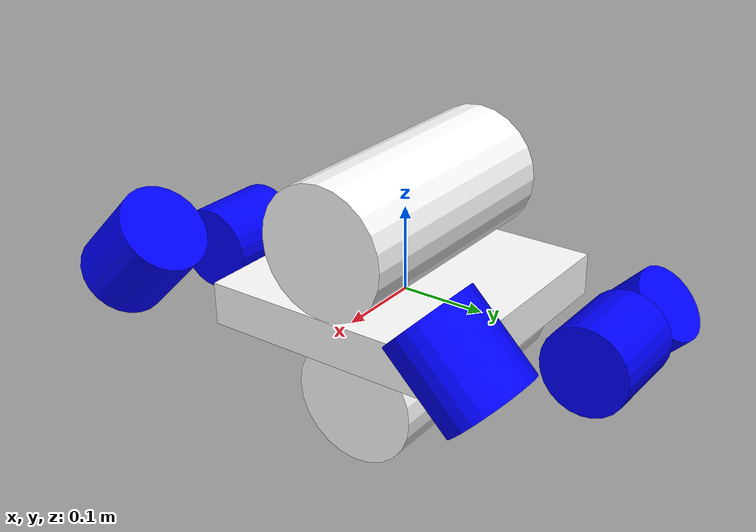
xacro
<?xml version="1.0"?>
<robot xmlns:xacro="http://www.ros.org/wiki/xacro" name="robot">

    <!-- Include the thruster Xacro file -->
    <xacro:include filename="thruster.xacro"/>
    <xacro:include filename="inertial_macros.xacro"/>

    <material name="white">
        <color rgba="1 1 1 1" />
    </material>

    <material name="orange">
        <color rgba="1 0.3 0.1 1"/>
    </material>

    <material name="blue">
        <color rgba="0.2 0.2 1 1"/>
    </material>

    <material name="black">
        <color rgba="0 0 0 1"/>
    </material>

    <material name="red">
        <color rgba="1 0 0 1"/>
    </material>

    <link name="base_link">
    </link>

    <!-- Define the base link -->
    <joint name="chassis_joint" type="fixed">
        <parent link="base_link"/>
        <child link="chassis"/>
        <origin xyz="0 0 0"/>
    </joint>

    <link name="chassis">
        <visual>
            <origin xyz="0 0 0" rpy="0 0 0"/>
            <geometry>
                <box size="0.3 0.3 0.05"/>
            </geometry>
            <material name="white"/>
        </visual>
        <xacro:inertial_box mass="0.5" x="0.3" y="0.3" z="0.15">
            <origin xyz="0.15 0 0.075" rpy="0 0 0"/>
        </xacro:inertial_box>
    </link>

    <joint name="upper_ebay_joint" type="fixed">
        <parent link="chassis"/>
        <child link="upper_ebay"/>
        <origin xyz="0 0 0.1" rpy="0 ${pi/2} 0"/>
    </joint>

    <link name="upper_ebay">
        <visual>
            <origin xyz="0 0 0" rpy="0 0 0"/>
            <geometry>
                <cylinder radius="0.075" length="0.3"/>
            </geometry>
            <material name="white"/>
        </visual>
        <xacro:inertial_cylinder mass="0.1" length="0.3" radius="0.075">
            <origin xyz="0 0 0" rpy="0 0 0"/>
        </xacro:inertial_cylinder>
    </link>

    <joint name="lower_ebay_joint" type="fixed">
        <parent link="chassis"/>
        <child link="lower_ebay"/>
        <origin xyz="-0.05 0 -0.1" rpy="0 ${pi/2} 0"/>
    </joint>

    <link name="lower_ebay">
        <visual>
            <origin xyz="0 0 0" rpy="0 0 0"/>
            <geometry>
                <cylinder radius="0.075" length="0.3"/>
            </geometry>
            <material name="white"/>
            <xacro:inertial_cylinder mass="0.1" length="0.3" radius="0.075">
                <origin xyz="0 0 0" rpy="0 0 0"/>
            </xacro:inertial_cylinder>
        </visual>
    </link>

    <!-- Add multiple thrusters with different positions and orientations -->
    <xacro:thruster name="thruster_0" parent="chassis" xyz="0.2 0.2 0.07" rpy="${pi/4} 0 0" />
    <xacro:thruster name="thruster_1" parent="chassis" xyz="0 0.25 0" rpy="0 ${pi/2} 0" />
    <xacro:thruster name="thruster_2" parent="chassis" xyz="-0.2 0.2 -0.07" rpy="${-pi/4} 0 0" />
    <xacro:thruster name="thruster_3" parent="chassis" xyz="0.2 -0.2 0.07" rpy="${-pi/4} 0 0" />
    <xacro:thruster name="thruster_4" parent="chassis" xyz="0 -0.25 0" rpy="0 ${pi/2} 0" />
    <xacro:thruster name="thruster_5" parent="chassis" xyz="-0.2 -0.2 -0.07" rpy="${pi/4} 0 0" />

</robot>

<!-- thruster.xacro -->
<robot xmlns:xacro="http://www.ros.org/wiki/xacro">
    <!-- Generic Thruster Macro -->
    <xacro:macro name="thruster" params="name parent xyz rpy">

        <joint name="${name}_joint" type="continuous">
            <parent link="${parent}"/>
            <child link="${name}"/>
            <origin xyz="${xyz}" rpy="${rpy}"/>
        </joint>

        <link name="${name}">
            <visual>
                <origin xyz="0 0 0" rpy="0 0 0" />
                <geometry>
                    <cylinder length="0.1" radius="0.05" />
                </geometry>
                <material name="blue">
                    <color rgba="0.0 0.0 1.0 0.0"/>
                </material>
            </visual>

            <inertial>
                <mass value="0.5"/>
                <origin xyz="0 0 0" rpy="0 0 0"/>
                <inertia ixx="0.0001" ixy="0" ixz="0" iyy="0.0001" iyz="0" izz="0.0001"/>
            </inertial>
        </link>
    </xacro:macro>

</robot>
